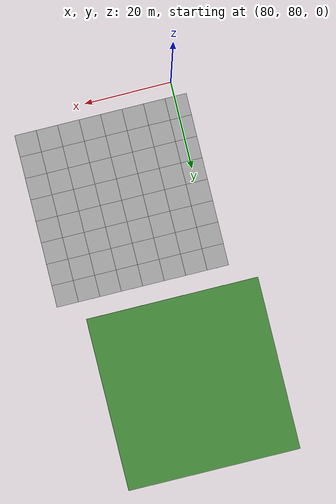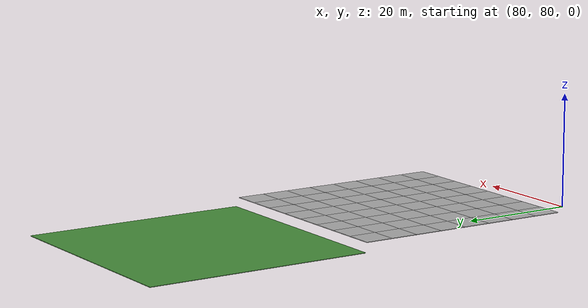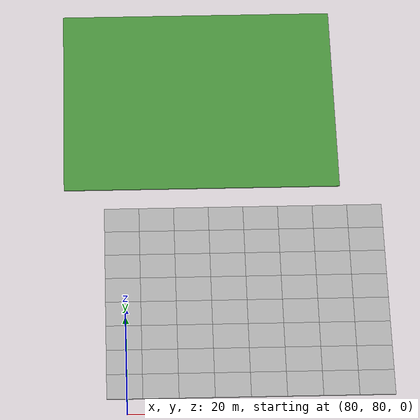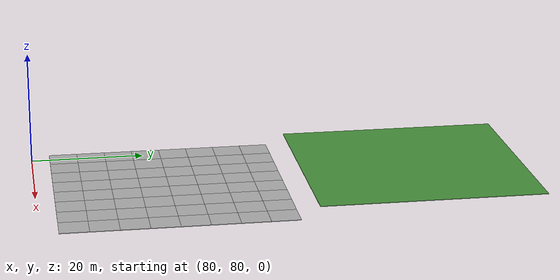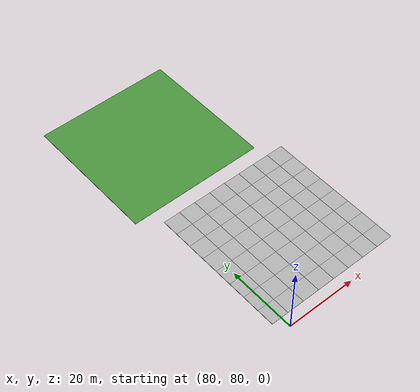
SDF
<sdf version="1.7">
 <world name="default">
  <model name="mud_plane_40x40_11">
   <model name="mud_plane_20x20">
    <model name="mud_plane">
     <static>1</static>
     <link name="link">
      <collision name="collision"><geometry><box><size>10 10 0.1</size></box></geometry></collision>
      <visual name="visual_1">
       <pose>-2.5 2.5 -0.05 0 -0 0</pose>
       <cast_shadows>0</cast_shadows>
       <geometry><box><size>5 5 0.1</size></box></geometry>
       <material>
        <script>
         <uri>model://mud_plane/materials/scripts</uri>
         <uri>model://mud_plane/materials/textures</uri>
         <name>vrc/mud</name>
        </script>
       </material>
      </visual>
      <visual name="visual_2">
       <pose>2.5 2.5 -0.05 0 -0 0</pose>
       <cast_shadows>0</cast_shadows>
       <geometry><box><size>5 5 0.1</size></box></geometry>
       <material>
        <script>
         <uri>model://mud_plane/materials/scripts</uri>
         <uri>model://mud_plane/materials/textures</uri>
         <name>vrc/mud</name>
        </script>
       </material>
      </visual>
      <visual name="visual_3">
       <pose>2.5 -2.5 -0.05 0 -0 0</pose>
       <cast_shadows>0</cast_shadows>
       <geometry><box><size>5 5 0.1</size></box></geometry>
       <material>
        <script>
         <uri>model://mud_plane/materials/scripts</uri>
         <uri>model://mud_plane/materials/textures</uri>
         <name>vrc/mud</name>
        </script>
       </material>
      </visual>
      <visual name="visual_4">
       <pose>-2.5 -2.5 -0.05 0 -0 0</pose>
       <cast_shadows>0</cast_shadows>
       <geometry><box><size>5 5 0.1</size></box></geometry>
       <material>
        <script>
         <uri>model://mud_plane/materials/scripts</uri>
         <uri>model://mud_plane/materials/textures</uri>
         <name>vrc/mud</name>
        </script>
       </material>
      </visual>
     </link>
     <pose>-4.99986 -4.99991 0 0 -0 0</pose>
    </model>
    <model name="mud_plane_0">
     <static>1</static>
     <link name="link">
      <collision name="collision"><geometry><box><size>10 10 0.1</size></box></geometry></collision>
      <visual name="visual_1">
       <pose>-2.5 2.5 -0.05 0 -0 0</pose>
       <cast_shadows>0</cast_shadows>
       <geometry><box><size>5 5 0.1</size></box></geometry>
       <material>
        <script>
         <uri>model://mud_plane/materials/scripts</uri>
         <uri>model://mud_plane/materials/textures</uri>
         <name>vrc/mud</name>
        </script>
       </material>
      </visual>
      <visual name="visual_2">
       <pose>2.5 2.5 -0.05 0 -0 0</pose>
       <cast_shadows>0</cast_shadows>
       <geometry><box><size>5 5 0.1</size></box></geometry>
       <material>
        <script>
         <uri>model://mud_plane/materials/scripts</uri>
         <uri>model://mud_plane/materials/textures</uri>
         <name>vrc/mud</name>
        </script>
       </material>
      </visual>
      <visual name="visual_3">
       <pose>2.5 -2.5 -0.05 0 -0 0</pose>
       <cast_shadows>0</cast_shadows>
       <geometry><box><size>5 5 0.1</size></box></geometry>
       <material>
        <script>
         <uri>model://mud_plane/materials/scripts</uri>
         <uri>model://mud_plane/materials/textures</uri>
         <name>vrc/mud</name>
        </script>
       </material>
      </visual>
      <visual name="visual_4">
       <pose>-2.5 -2.5 -0.05 0 -0 0</pose>
       <cast_shadows>0</cast_shadows>
       <geometry><box><size>5 5 0.1</size></box></geometry>
       <material>
        <script>
         <uri>model://mud_plane/materials/scripts</uri>
         <uri>model://mud_plane/materials/textures</uri>
         <name>vrc/mud</name>
        </script>
       </material>
      </visual>
     </link>
     <pose>-4.99946 4.99954 0 0 -0 0</pose>
    </model>
    <model name="mud_plane_1">
     <static>1</static>
     <link name="link">
      <collision name="collision"><geometry><box><size>10 10 0.1</size></box></geometry></collision>
      <visual name="visual_1">
       <pose>-2.5 2.5 -0.05 0 -0 0</pose>
       <cast_shadows>0</cast_shadows>
       <geometry><box><size>5 5 0.1</size></box></geometry>
       <material>
        <script>
         <uri>model://mud_plane/materials/scripts</uri>
         <uri>model://mud_plane/materials/textures</uri>
         <name>vrc/mud</name>
        </script>
       </material>
      </visual>
      <visual name="visual_2">
       <pose>2.5 2.5 -0.05 0 -0 0</pose>
       <cast_shadows>0</cast_shadows>
       <geometry><box><size>5 5 0.1</size></box></geometry>
       <material>
        <script>
         <uri>model://mud_plane/materials/scripts</uri>
         <uri>model://mud_plane/materials/textures</uri>
         <name>vrc/mud</name>
        </script>
       </material>
      </visual>
      <visual name="visual_3">
       <pose>2.5 -2.5 -0.05 0 -0 0</pose>
       <cast_shadows>0</cast_shadows>
       <geometry><box><size>5 5 0.1</size></box></geometry>
       <material>
        <script>
         <uri>model://mud_plane/materials/scripts</uri>
         <uri>model://mud_plane/materials/textures</uri>
         <name>vrc/mud</name>
        </script>
       </material>
      </visual>
      <visual name="visual_4">
       <pose>-2.5 -2.5 -0.05 0 -0 0</pose>
       <cast_shadows>0</cast_shadows>
       <geometry><box><size>5 5 0.1</size></box></geometry>
       <material>
        <script>
         <uri>model://mud_plane/materials/scripts</uri>
         <uri>model://mud_plane/materials/textures</uri>
         <name>vrc/mud</name>
        </script>
       </material>
      </visual>
     </link>
     <pose>4.99964 -4.99949 0 0 -0 0</pose>
    </model>
    <model name="mud_plane_2">
     <static>1</static>
     <link name="link">
      <collision name="collision"><geometry><box><size>10 10 0.1</size></box></geometry></collision>
      <visual name="visual_1">
       <pose>-2.5 2.5 -0.05 0 -0 0</pose>
       <cast_shadows>0</cast_shadows>
       <geometry><box><size>5 5 0.1</size></box></geometry>
       <material>
        <script>
         <uri>model://mud_plane/materials/scripts</uri>
         <uri>model://mud_plane/materials/textures</uri>
         <name>vrc/mud</name>
        </script>
       </material>
      </visual>
      <visual name="visual_2">
       <pose>2.5 2.5 -0.05 0 -0 0</pose>
       <cast_shadows>0</cast_shadows>
       <geometry><box><size>5 5 0.1</size></box></geometry>
       <material>
        <script>
         <uri>model://mud_plane/materials/scripts</uri>
         <uri>model://mud_plane/materials/textures</uri>
         <name>vrc/mud</name>
        </script>
       </material>
      </visual>
      <visual name="visual_3">
       <pose>2.5 -2.5 -0.05 0 -0 0</pose>
       <cast_shadows>0</cast_shadows>
       <geometry><box><size>5 5 0.1</size></box></geometry>
       <material>
        <script>
         <uri>model://mud_plane/materials/scripts</uri>
         <uri>model://mud_plane/materials/textures</uri>
         <name>vrc/mud</name>
        </script>
       </material>
      </visual>
      <visual name="visual_4">
       <pose>-2.5 -2.5 -0.05 0 -0 0</pose>
       <cast_shadows>0</cast_shadows>
       <geometry><box><size>5 5 0.1</size></box></geometry>
       <material>
        <script>
         <uri>model://mud_plane/materials/scripts</uri>
         <uri>model://mud_plane/materials/textures</uri>
         <name>vrc/mud</name>
        </script>
       </material>
      </visual>
     </link>
     <pose>4.99967 4.99986 0 0 -0 0</pose>
    </model>
    <static>0</static>
    <pose>-9.99895 9.99843 0 0 -0 0</pose>
   </model>
   <model name="mud_plane_20x20_0">
    <model name="mud_plane">
     <static>1</static>
     <link name="link">
      <collision name="collision"><geometry><box><size>10 10 0.1</size></box></geometry></collision>
      <visual name="visual_1">
       <pose>-2.5 2.5 -0.05 0 -0 0</pose>
       <cast_shadows>0</cast_shadows>
       <geometry><box><size>5 5 0.1</size></box></geometry>
       <material>
        <script>
         <uri>model://mud_plane/materials/scripts</uri>
         <uri>model://mud_plane/materials/textures</uri>
         <name>vrc/mud</name>
        </script>
       </material>
      </visual>
      <visual name="visual_2">
       <pose>2.5 2.5 -0.05 0 -0 0</pose>
       <cast_shadows>0</cast_shadows>
       <geometry><box><size>5 5 0.1</size></box></geometry>
       <material>
        <script>
         <uri>model://mud_plane/materials/scripts</uri>
         <uri>model://mud_plane/materials/textures</uri>
         <name>vrc/mud</name>
        </script>
       </material>
      </visual>
      <visual name="visual_3">
       <pose>2.5 -2.5 -0.05 0 -0 0</pose>
       <cast_shadows>0</cast_shadows>
       <geometry><box><size>5 5 0.1</size></box></geometry>
       <material>
        <script>
         <uri>model://mud_plane/materials/scripts</uri>
         <uri>model://mud_plane/materials/textures</uri>
         <name>vrc/mud</name>
        </script>
       </material>
      </visual>
      <visual name="visual_4">
       <pose>-2.5 -2.5 -0.05 0 -0 0</pose>
       <cast_shadows>0</cast_shadows>
       <geometry><box><size>5 5 0.1</size></box></geometry>
       <material>
        <script>
         <uri>model://mud_plane/materials/scripts</uri>
         <uri>model://mud_plane/materials/textures</uri>
         <name>vrc/mud</name>
        </script>
       </material>
      </visual>
     </link>
     <pose>-4.99986 -4.99991 0 0 -0 0</pose>
    </model>
    <model name="mud_plane_0">
     <static>1</static>
     <link name="link">
      <collision name="collision"><geometry><box><size>10 10 0.1</size></box></geometry></collision>
      <visual name="visual_1">
       <pose>-2.5 2.5 -0.05 0 -0 0</pose>
       <cast_shadows>0</cast_shadows>
       <geometry><box><size>5 5 0.1</size></box></geometry>
       <material>
        <script>
         <uri>model://mud_plane/materials/scripts</uri>
         <uri>model://mud_plane/materials/textures</uri>
         <name>vrc/mud</name>
        </script>
       </material>
      </visual>
      <visual name="visual_2">
       <pose>2.5 2.5 -0.05 0 -0 0</pose>
       <cast_shadows>0</cast_shadows>
       <geometry><box><size>5 5 0.1</size></box></geometry>
       <material>
        <script>
         <uri>model://mud_plane/materials/scripts</uri>
         <uri>model://mud_plane/materials/textures</uri>
         <name>vrc/mud</name>
        </script>
       </material>
      </visual>
      <visual name="visual_3">
       <pose>2.5 -2.5 -0.05 0 -0 0</pose>
       <cast_shadows>0</cast_shadows>
       <geometry><box><size>5 5 0.1</size></box></geometry>
       <material>
        <script>
         <uri>model://mud_plane/materials/scripts</uri>
         <uri>model://mud_plane/materials/textures</uri>
         <name>vrc/mud</name>
        </script>
       </material>
      </visual>
      <visual name="visual_4">
       <pose>-2.5 -2.5 -0.05 0 -0 0</pose>
       <cast_shadows>0</cast_shadows>
       <geometry><box><size>5 5 0.1</size></box></geometry>
       <material>
        <script>
         <uri>model://mud_plane/materials/scripts</uri>
         <uri>model://mud_plane/materials/textures</uri>
         <name>vrc/mud</name>
        </script>
       </material>
      </visual>
     </link>
     <pose>-4.99946 4.99954 0 0 -0 0</pose>
    </model>
    <model name="mud_plane_1">
     <static>1</static>
     <link name="link">
      <collision name="collision"><geometry><box><size>10 10 0.1</size></box></geometry></collision>
      <visual name="visual_1">
       <pose>-2.5 2.5 -0.05 0 -0 0</pose>
       <cast_shadows>0</cast_shadows>
       <geometry><box><size>5 5 0.1</size></box></geometry>
       <material>
        <script>
         <uri>model://mud_plane/materials/scripts</uri>
         <uri>model://mud_plane/materials/textures</uri>
         <name>vrc/mud</name>
        </script>
       </material>
      </visual>
      <visual name="visual_2">
       <pose>2.5 2.5 -0.05 0 -0 0</pose>
       <cast_shadows>0</cast_shadows>
       <geometry><box><size>5 5 0.1</size></box></geometry>
       <material>
        <script>
         <uri>model://mud_plane/materials/scripts</uri>
         <uri>model://mud_plane/materials/textures</uri>
         <name>vrc/mud</name>
        </script>
       </material>
      </visual>
      <visual name="visual_3">
       <pose>2.5 -2.5 -0.05 0 -0 0</pose>
       <cast_shadows>0</cast_shadows>
       <geometry><box><size>5 5 0.1</size></box></geometry>
       <material>
        <script>
         <uri>model://mud_plane/materials/scripts</uri>
         <uri>model://mud_plane/materials/textures</uri>
         <name>vrc/mud</name>
        </script>
       </material>
      </visual>
      <visual name="visual_4">
       <pose>-2.5 -2.5 -0.05 0 -0 0</pose>
       <cast_shadows>0</cast_shadows>
       <geometry><box><size>5 5 0.1</size></box></geometry>
       <material>
        <script>
         <uri>model://mud_plane/materials/scripts</uri>
         <uri>model://mud_plane/materials/textures</uri>
         <name>vrc/mud</name>
        </script>
       </material>
      </visual>
     </link>
     <pose>4.99964 -4.99949 0 0 -0 0</pose>
    </model>
    <model name="mud_plane_2">
     <static>1</static>
     <link name="link">
      <collision name="collision"><geometry><box><size>10 10 0.1</size></box></geometry></collision>
      <visual name="visual_1">
       <pose>-2.5 2.5 -0.05 0 -0 0</pose>
       <cast_shadows>0</cast_shadows>
       <geometry><box><size>5 5 0.1</size></box></geometry>
       <material>
        <script>
         <uri>model://mud_plane/materials/scripts</uri>
         <uri>model://mud_plane/materials/textures</uri>
         <name>vrc/mud</name>
        </script>
       </material>
      </visual>
      <visual name="visual_2">
       <pose>2.5 2.5 -0.05 0 -0 0</pose>
       <cast_shadows>0</cast_shadows>
       <geometry><box><size>5 5 0.1</size></box></geometry>
       <material>
        <script>
         <uri>model://mud_plane/materials/scripts</uri>
         <uri>model://mud_plane/materials/textures</uri>
         <name>vrc/mud</name>
        </script>
       </material>
      </visual>
      <visual name="visual_3">
       <pose>2.5 -2.5 -0.05 0 -0 0</pose>
       <cast_shadows>0</cast_shadows>
       <geometry><box><size>5 5 0.1</size></box></geometry>
       <material>
        <script>
         <uri>model://mud_plane/materials/scripts</uri>
         <uri>model://mud_plane/materials/textures</uri>
         <name>vrc/mud</name>
        </script>
       </material>
      </visual>
      <visual name="visual_4">
       <pose>-2.5 -2.5 -0.05 0 -0 0</pose>
       <cast_shadows>0</cast_shadows>
       <geometry><box><size>5 5 0.1</size></box></geometry>
       <material>
        <script>
         <uri>model://mud_plane/materials/scripts</uri>
         <uri>model://mud_plane/materials/textures</uri>
         <name>vrc/mud</name>
        </script>
       </material>
      </visual>
     </link>
     <pose>4.99967 4.99986 0 0 -0 0</pose>
    </model>
    <static>0</static>
    <pose>9.99933 9.9997 0 0 -0 0</pose>
   </model>
   <model name="mud_plane_20x20_1">
    <model name="mud_plane">
     <static>1</static>
     <link name="link">
      <collision name="collision"><geometry><box><size>10 10 0.1</size></box></geometry></collision>
      <visual name="visual_1">
       <pose>-2.5 2.5 -0.05 0 -0 0</pose>
       <cast_shadows>0</cast_shadows>
       <geometry><box><size>5 5 0.1</size></box></geometry>
       <material>
        <script>
         <uri>model://mud_plane/materials/scripts</uri>
         <uri>model://mud_plane/materials/textures</uri>
         <name>vrc/mud</name>
        </script>
       </material>
      </visual>
      <visual name="visual_2">
       <pose>2.5 2.5 -0.05 0 -0 0</pose>
       <cast_shadows>0</cast_shadows>
       <geometry><box><size>5 5 0.1</size></box></geometry>
       <material>
        <script>
         <uri>model://mud_plane/materials/scripts</uri>
         <uri>model://mud_plane/materials/textures</uri>
         <name>vrc/mud</name>
        </script>
       </material>
      </visual>
      <visual name="visual_3">
       <pose>2.5 -2.5 -0.05 0 -0 0</pose>
       <cast_shadows>0</cast_shadows>
       <geometry><box><size>5 5 0.1</size></box></geometry>
       <material>
        <script>
         <uri>model://mud_plane/materials/scripts</uri>
         <uri>model://mud_plane/materials/textures</uri>
         <name>vrc/mud</name>
        </script>
       </material>
      </visual>
      <visual name="visual_4">
       <pose>-2.5 -2.5 -0.05 0 -0 0</pose>
       <cast_shadows>0</cast_shadows>
       <geometry><box><size>5 5 0.1</size></box></geometry>
       <material>
        <script>
         <uri>model://mud_plane/materials/scripts</uri>
         <uri>model://mud_plane/materials/textures</uri>
         <name>vrc/mud</name>
        </script>
       </material>
      </visual>
     </link>
     <pose>-4.99986 -4.99991 0 0 -0 0</pose>
    </model>
    <model name="mud_plane_0">
     <static>1</static>
     <link name="link">
      <collision name="collision"><geometry><box><size>10 10 0.1</size></box></geometry></collision>
      <visual name="visual_1">
       <pose>-2.5 2.5 -0.05 0 -0 0</pose>
       <cast_shadows>0</cast_shadows>
       <geometry><box><size>5 5 0.1</size></box></geometry>
       <material>
        <script>
         <uri>model://mud_plane/materials/scripts</uri>
         <uri>model://mud_plane/materials/textures</uri>
         <name>vrc/mud</name>
        </script>
       </material>
      </visual>
      <visual name="visual_2">
       <pose>2.5 2.5 -0.05 0 -0 0</pose>
       <cast_shadows>0</cast_shadows>
       <geometry><box><size>5 5 0.1</size></box></geometry>
       <material>
        <script>
         <uri>model://mud_plane/materials/scripts</uri>
         <uri>model://mud_plane/materials/textures</uri>
         <name>vrc/mud</name>
        </script>
       </material>
      </visual>
      <visual name="visual_3">
       <pose>2.5 -2.5 -0.05 0 -0 0</pose>
       <cast_shadows>0</cast_shadows>
       <geometry><box><size>5 5 0.1</size></box></geometry>
       <material>
        <script>
         <uri>model://mud_plane/materials/scripts</uri>
         <uri>model://mud_plane/materials/textures</uri>
         <name>vrc/mud</name>
        </script>
       </material>
      </visual>
      <visual name="visual_4">
       <pose>-2.5 -2.5 -0.05 0 -0 0</pose>
       <cast_shadows>0</cast_shadows>
       <geometry><box><size>5 5 0.1</size></box></geometry>
       <material>
        <script>
         <uri>model://mud_plane/materials/scripts</uri>
         <uri>model://mud_plane/materials/textures</uri>
         <name>vrc/mud</name>
        </script>
       </material>
      </visual>
     </link>
     <pose>-4.99946 4.99954 0 0 -0 0</pose>
    </model>
    <model name="mud_plane_1">
     <static>1</static>
     <link name="link">
      <collision name="collision"><geometry><box><size>10 10 0.1</size></box></geometry></collision>
      <visual name="visual_1">
       <pose>-2.5 2.5 -0.05 0 -0 0</pose>
       <cast_shadows>0</cast_shadows>
       <geometry><box><size>5 5 0.1</size></box></geometry>
       <material>
        <script>
         <uri>model://mud_plane/materials/scripts</uri>
         <uri>model://mud_plane/materials/textures</uri>
         <name>vrc/mud</name>
        </script>
       </material>
      </visual>
      <visual name="visual_2">
       <pose>2.5 2.5 -0.05 0 -0 0</pose>
       <cast_shadows>0</cast_shadows>
       <geometry><box><size>5 5 0.1</size></box></geometry>
       <material>
        <script>
         <uri>model://mud_plane/materials/scripts</uri>
         <uri>model://mud_plane/materials/textures</uri>
         <name>vrc/mud</name>
        </script>
       </material>
      </visual>
      <visual name="visual_3">
       <pose>2.5 -2.5 -0.05 0 -0 0</pose>
       <cast_shadows>0</cast_shadows>
       <geometry><box><size>5 5 0.1</size></box></geometry>
       <material>
        <script>
         <uri>model://mud_plane/materials/scripts</uri>
         <uri>model://mud_plane/materials/textures</uri>
         <name>vrc/mud</name>
        </script>
       </material>
      </visual>
      <visual name="visual_4">
       <pose>-2.5 -2.5 -0.05 0 -0 0</pose>
       <cast_shadows>0</cast_shadows>
       <geometry><box><size>5 5 0.1</size></box></geometry>
       <material>
        <script>
         <uri>model://mud_plane/materials/scripts</uri>
         <uri>model://mud_plane/materials/textures</uri>
         <name>vrc/mud</name>
        </script>
       </material>
      </visual>
     </link>
     <pose>4.99964 -4.99949 0 0 -0 0</pose>
    </model>
    <model name="mud_plane_2">
     <static>1</static>
     <link name="link">
      <collision name="collision"><geometry><box><size>10 10 0.1</size></box></geometry></collision>
      <visual name="visual_1">
       <pose>-2.5 2.5 -0.05 0 -0 0</pose>
       <cast_shadows>0</cast_shadows>
       <geometry><box><size>5 5 0.1</size></box></geometry>
       <material>
        <script>
         <uri>model://mud_plane/materials/scripts</uri>
         <uri>model://mud_plane/materials/textures</uri>
         <name>vrc/mud</name>
        </script>
       </material>
      </visual>
      <visual name="visual_2">
       <pose>2.5 2.5 -0.05 0 -0 0</pose>
       <cast_shadows>0</cast_shadows>
       <geometry><box><size>5 5 0.1</size></box></geometry>
       <material>
        <script>
         <uri>model://mud_plane/materials/scripts</uri>
         <uri>model://mud_plane/materials/textures</uri>
         <name>vrc/mud</name>
        </script>
       </material>
      </visual>
      <visual name="visual_3">
       <pose>2.5 -2.5 -0.05 0 -0 0</pose>
       <cast_shadows>0</cast_shadows>
       <geometry><box><size>5 5 0.1</size></box></geometry>
       <material>
        <script>
         <uri>model://mud_plane/materials/scripts</uri>
         <uri>model://mud_plane/materials/textures</uri>
         <name>vrc/mud</name>
        </script>
       </material>
      </visual>
      <visual name="visual_4">
       <pose>-2.5 -2.5 -0.05 0 -0 0</pose>
       <cast_shadows>0</cast_shadows>
       <geometry><box><size>5 5 0.1</size></box></geometry>
       <material>
        <script>
         <uri>model://mud_plane/materials/scripts</uri>
         <uri>model://mud_plane/materials/textures</uri>
         <name>vrc/mud</name>
        </script>
       </material>
      </visual>
     </link>
     <pose>4.99967 4.99986 0 0 -0 0</pose>
    </model>
    <static>0</static>
    <pose>9.9993 -9.99877 0 0 -0 0</pose>
   </model>
   <model name="mud_plane_20x20_2">
    <model name="mud_plane">
     <static>1</static>
     <link name="link">
      <collision name="collision"><geometry><box><size>10 10 0.1</size></box></geometry></collision>
      <visual name="visual_1">
       <pose>-2.5 2.5 -0.05 0 -0 0</pose>
       <cast_shadows>0</cast_shadows>
       <geometry><box><size>5 5 0.1</size></box></geometry>
       <material>
        <script>
         <uri>model://mud_plane/materials/scripts</uri>
         <uri>model://mud_plane/materials/textures</uri>
         <name>vrc/mud</name>
        </script>
       </material>
      </visual>
      <visual name="visual_2">
       <pose>2.5 2.5 -0.05 0 -0 0</pose>
       <cast_shadows>0</cast_shadows>
       <geometry><box><size>5 5 0.1</size></box></geometry>
       <material>
        <script>
         <uri>model://mud_plane/materials/scripts</uri>
         <uri>model://mud_plane/materials/textures</uri>
         <name>vrc/mud</name>
        </script>
       </material>
      </visual>
      <visual name="visual_3">
       <pose>2.5 -2.5 -0.05 0 -0 0</pose>
       <cast_shadows>0</cast_shadows>
       <geometry><box><size>5 5 0.1</size></box></geometry>
       <material>
        <script>
         <uri>model://mud_plane/materials/scripts</uri>
         <uri>model://mud_plane/materials/textures</uri>
         <name>vrc/mud</name>
        </script>
       </material>
      </visual>
      <visual name="visual_4">
       <pose>-2.5 -2.5 -0.05 0 -0 0</pose>
       <cast_shadows>0</cast_shadows>
       <geometry><box><size>5 5 0.1</size></box></geometry>
       <material>
        <script>
         <uri>model://mud_plane/materials/scripts</uri>
         <uri>model://mud_plane/materials/textures</uri>
         <name>vrc/mud</name>
        </script>
       </material>
      </visual>
     </link>
     <pose>-4.99986 -4.99991 0 0 -0 0</pose>
    </model>
    <model name="mud_plane_0">
     <static>1</static>
     <link name="link">
      <collision name="collision"><geometry><box><size>10 10 0.1</size></box></geometry></collision>
      <visual name="visual_1">
       <pose>-2.5 2.5 -0.05 0 -0 0</pose>
       <cast_shadows>0</cast_shadows>
       <geometry><box><size>5 5 0.1</size></box></geometry>
       <material>
        <script>
         <uri>model://mud_plane/materials/scripts</uri>
         <uri>model://mud_plane/materials/textures</uri>
         <name>vrc/mud</name>
        </script>
       </material>
      </visual>
      <visual name="visual_2">
       <pose>2.5 2.5 -0.05 0 -0 0</pose>
       <cast_shadows>0</cast_shadows>
       <geometry><box><size>5 5 0.1</size></box></geometry>
       <material>
        <script>
         <uri>model://mud_plane/materials/scripts</uri>
         <uri>model://mud_plane/materials/textures</uri>
         <name>vrc/mud</name>
        </script>
       </material>
      </visual>
      <visual name="visual_3">
       <pose>2.5 -2.5 -0.05 0 -0 0</pose>
       <cast_shadows>0</cast_shadows>
       <geometry><box><size>5 5 0.1</size></box></geometry>
       <material>
        <script>
         <uri>model://mud_plane/materials/scripts</uri>
         <uri>model://mud_plane/materials/textures</uri>
         <name>vrc/mud</name>
        </script>
       </material>
      </visual>
      <visual name="visual_4">
       <pose>-2.5 -2.5 -0.05 0 -0 0</pose>
       <cast_shadows>0</cast_shadows>
       <geometry><box><size>5 5 0.1</size></box></geometry>
       <material>
        <script>
         <uri>model://mud_plane/materials/scripts</uri>
         <uri>model://mud_plane/materials/textures</uri>
         <name>vrc/mud</name>
        </script>
       </material>
      </visual>
     </link>
     <pose>-4.99946 4.99954 0 0 -0 0</pose>
    </model>
    <model name="mud_plane_1">
     <static>1</static>
     <link name="link">
      <collision name="collision"><geometry><box><size>10 10 0.1</size></box></geometry></collision>
      <visual name="visual_1">
       <pose>-2.5 2.5 -0.05 0 -0 0</pose>
       <cast_shadows>0</cast_shadows>
       <geometry><box><size>5 5 0.1</size></box></geometry>
       <material>
        <script>
         <uri>model://mud_plane/materials/scripts</uri>
         <uri>model://mud_plane/materials/textures</uri>
         <name>vrc/mud</name>
        </script>
       </material>
      </visual>
      <visual name="visual_2">
       <pose>2.5 2.5 -0.05 0 -0 0</pose>
       <cast_shadows>0</cast_shadows>
       <geometry><box><size>5 5 0.1</size></box></geometry>
       <material>
        <script>
         <uri>model://mud_plane/materials/scripts</uri>
         <uri>model://mud_plane/materials/textures</uri>
         <name>vrc/mud</name>
        </script>
       </material>
      </visual>
      <visual name="visual_3">
       <pose>2.5 -2.5 -0.05 0 -0 0</pose>
       <cast_shadows>0</cast_shadows>
       <geometry><box><size>5 5 0.1</size></box></geometry>
       <material>
        <script>
         <uri>model://mud_plane/materials/scripts</uri>
         <uri>model://mud_plane/materials/textures</uri>
         <name>vrc/mud</name>
        </script>
       </material>
      </visual>
      <visual name="visual_4">
       <pose>-2.5 -2.5 -0.05 0 -0 0</pose>
       <cast_shadows>0</cast_shadows>
       <geometry><box><size>5 5 0.1</size></box></geometry>
       <material>
        <script>
         <uri>model://mud_plane/materials/scripts</uri>
         <uri>model://mud_plane/materials/textures</uri>
         <name>vrc/mud</name>
        </script>
       </material>
      </visual>
     </link>
     <pose>4.99964 -4.99949 0 0 -0 0</pose>
    </model>
    <model name="mud_plane_2">
     <static>1</static>
     <link name="link">
      <collision name="collision"><geometry><box><size>10 10 0.1</size></box></geometry></collision>
      <visual name="visual_1">
       <pose>-2.5 2.5 -0.05 0 -0 0</pose>
       <cast_shadows>0</cast_shadows>
       <geometry><box><size>5 5 0.1</size></box></geometry>
       <material>
        <script>
         <uri>model://mud_plane/materials/scripts</uri>
         <uri>model://mud_plane/materials/textures</uri>
         <name>vrc/mud</name>
        </script>
       </material>
      </visual>
      <visual name="visual_2">
       <pose>2.5 2.5 -0.05 0 -0 0</pose>
       <cast_shadows>0</cast_shadows>
       <geometry><box><size>5 5 0.1</size></box></geometry>
       <material>
        <script>
         <uri>model://mud_plane/materials/scripts</uri>
         <uri>model://mud_plane/materials/textures</uri>
         <name>vrc/mud</name>
        </script>
       </material>
      </visual>
      <visual name="visual_3">
       <pose>2.5 -2.5 -0.05 0 -0 0</pose>
       <cast_shadows>0</cast_shadows>
       <geometry><box><size>5 5 0.1</size></box></geometry>
       <material>
        <script>
         <uri>model://mud_plane/materials/scripts</uri>
         <uri>model://mud_plane/materials/textures</uri>
         <name>vrc/mud</name>
        </script>
       </material>
      </visual>
      <visual name="visual_4">
       <pose>-2.5 -2.5 -0.05 0 -0 0</pose>
       <cast_shadows>0</cast_shadows>
       <geometry><box><size>5 5 0.1</size></box></geometry>
       <material>
        <script>
         <uri>model://mud_plane/materials/scripts</uri>
         <uri>model://mud_plane/materials/textures</uri>
         <name>vrc/mud</name>
        </script>
       </material>
      </visual>
     </link>
     <pose>4.99967 4.99986 0 0 -0 0</pose>
    </model>
    <static>0</static>
    <pose>-9.99969 -9.99935 0 0 -0 0</pose>
   </model>
   <static>0</static>
   <pose>97.1828 103.187 0 0 -0 0</pose>
  </model>
  <model name="grass_plane_40x40_0">
   <pose>91.3971 147.411 -0.05 0 -0 0</pose>
   <static>1</static>
   <link name="link">
    <collision name="collision"><geometry><box><size>40 40 0.1</size></box></geometry></collision>
    <visual name="grass">
     <cast_shadows>0</cast_shadows>
     <geometry><box><size>40 40 0.1</size></box></geometry>
     <material>
      <script><uri>file://media/materials/scripts/gazebo.material</uri><name>Gazebo/Grass</name></script>
     </material>
    </visual>
   </link>
  </model>
 </world>
</sdf>
